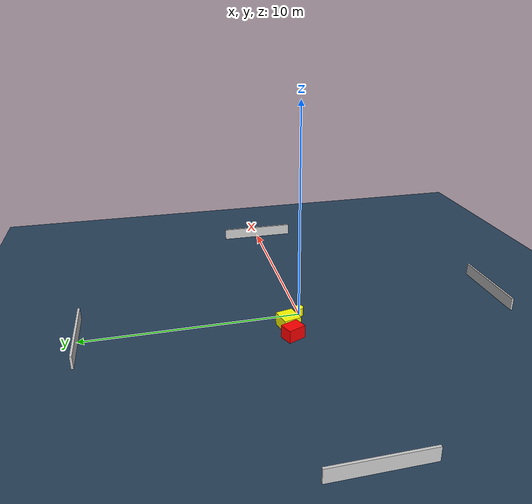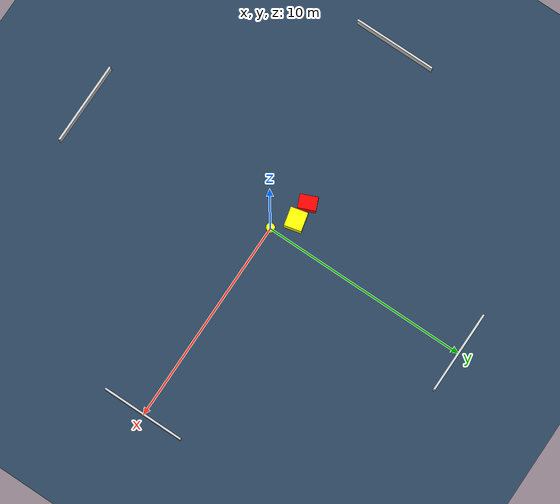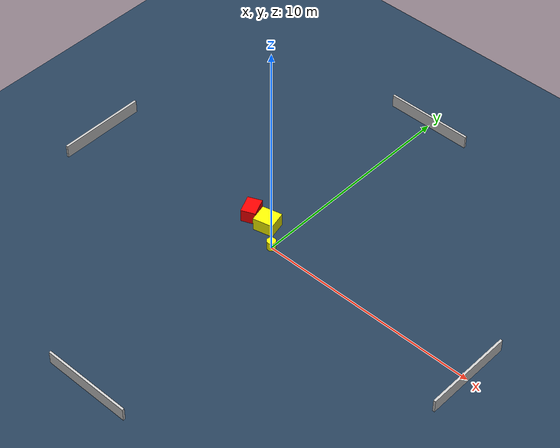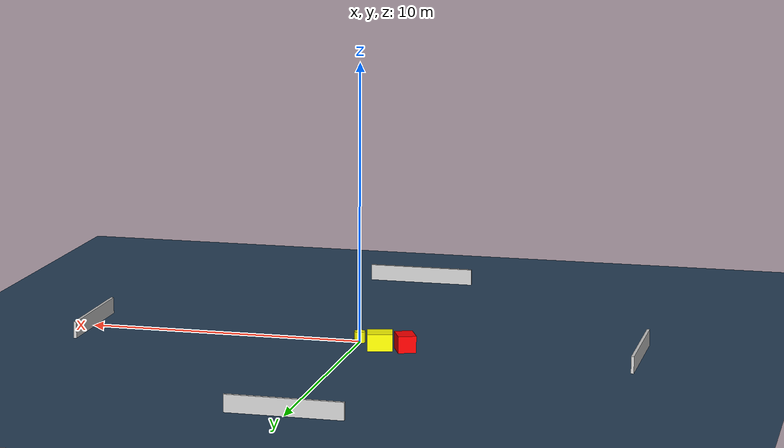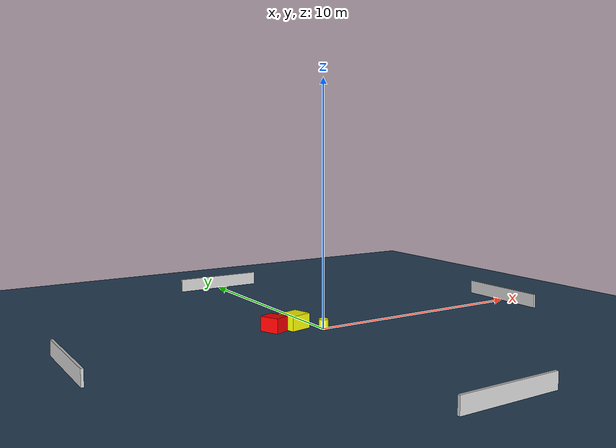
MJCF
<?xml version="1.0" ?>
<mujoco model="generated_environment">
  <option timestep="0.01" integrator="RK4" cone="elliptic"/>
  <default>
    <geom density="1"/>
  </default>
  <asset>
    <texture builtin="gradient" height="3072" name="skybox" rgb1="0.3 0.5 0.7" rgb2="0 0 0" type="skybox" width="512"/>
    <texture builtin="checker" height="300" name="groundplane" rgb1="0.2 0.3 0.4" rgb2="0.1 0.2 0.3" type="2d" width="300"/>
    <material name="groundplane" reflectance="0.2" texrepeat="5 5" texture="groundplane"/>
  </asset>
  <worldbody>
    <light dir="0 0 -1" directional="true" pos="0 0 1.5"/>
    <geom condim="3" friction="0.5 0.005 0.001" material="groundplane" name="floor" pos="0 0 0" size="0 0 0.05" type="plane"/>
    <body name="walls">
      <geom name="wall_1" condim="4" pos="-10.0 0.0 0.3" rgba="0.800000011920929 0.800000011920929 0.800000011920929 1.0" size="0.05 2.0 0.3" type="box"/>
      <geom name="wall_2" condim="4" pos="10.0 0.0 0.3" rgba="0.800000011920929 0.800000011920929 0.800000011920929 1.0" size="0.05 2.0 0.3" type="box"/>
      <geom name="wall_3" condim="4" pos="0.0 -10.0 0.3" rgba="0.800000011920929 0.800000011920929 0.800000011920929 1.0" size="2.0 0.05 0.3" type="box"/>
      <geom name="wall_4" condim="4" pos="0.0 10.0 0.3" rgba="0.800000011920929 0.800000011920929 0.800000011920929 1.0" size="2.0 0.05 0.3" type="box"/>
    </body>
    <body name="robot">
      <joint name="joint_x" type="slide" pos="0 0 0" axis="1 0 0"/>
      <joint name="joint_y" type="slide" pos="0 0 0" axis="0 1 0"/>
      <geom name="robot" type="cylinder" pos="0.0 0.0 0.2" size="0.2 0.2 0.0" mass="5.0" friction="1.0 0.005 0.0001" condim="4" rgba="1.0 1.0 0.0 1.0"/>
    </body>
    <body name="obstacle_1_movable">
      <geom name="obstacle_1_movable" condim="4" pos="-0.914518777562679 0.7520366644446251 0.3" euler="0 0 103.31784609859034" friction="0.0 0.005 0.001" rgba="1.0 1.0 0.0 1.0" size="0.4102908978906963 0.45294302459145513 0.3" type="box" mass="0.1"/>
      <joint type="free"/>
    </body>
    <body name="obstacle_2_static">
      <geom name="obstacle_2_static" condim="4" pos="-1.8319512018737556 0.770716159426754 0.3" euler="0 0 203.04363800492476" friction="0.0 0.005 0.001" rgba="1.0 0.0 0.0 1.0" size="0.32089919510951537 0.4220354081363641 0.3" type="box"/>
    </body>
  </worldbody>
  <actuator>
    <motor name="actuator_x" joint="joint_x" gear="1" ctrlrange="-1 1"/>
    <motor name="actuator_y" joint="joint_y" gear="1" ctrlrange="-1 1"/>
  </actuator>
</mujoco>
